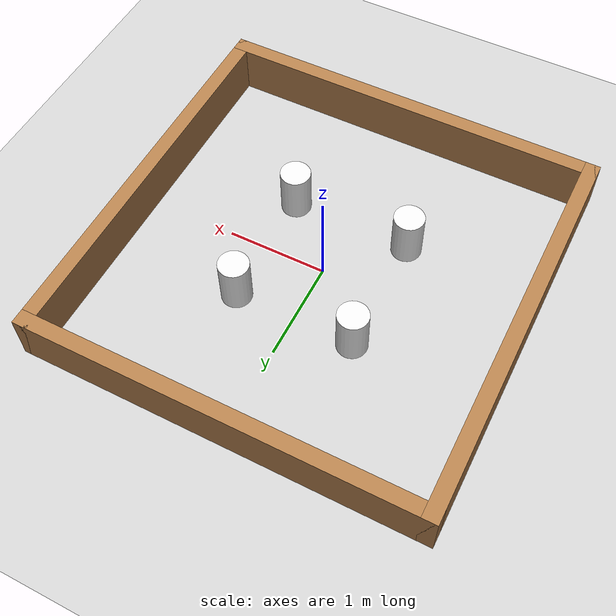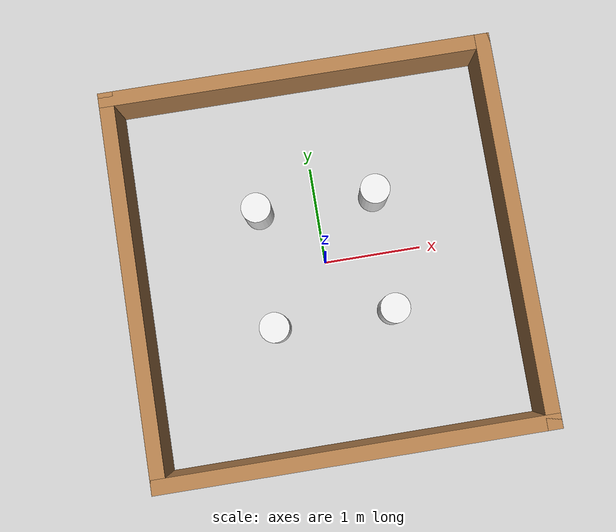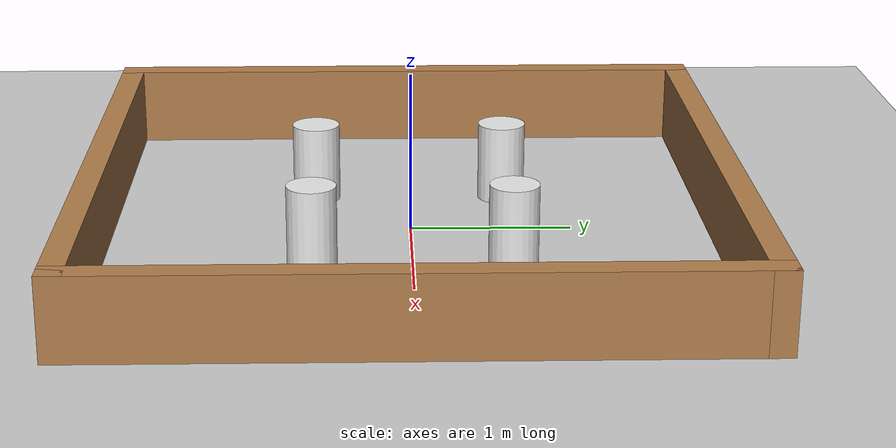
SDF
<sdf version='1.4'>
  <world name='default'>
    <!-- A global light source -->
    <include>
      <uri>model://sun</uri>
    </include>

    <!-- A ground plane -->
    <include>
      <uri>model://ground_plane</uri>
    </include>

    <physics type="ode">
      <real_time_update_rate>1000.0</real_time_update_rate>
      <max_step_size>0.001</max_step_size>
      <real_time_factor>1</real_time_factor>
      <ode>
        <solver>
          <type>quick</type>
          <iters>150</iters>
          <precon_iters>0</precon_iters>
          <sor>1.400000</sor>
          <use_dynamic_moi_rescaling>1</use_dynamic_moi_rescaling>
        </solver>
        <constraints>
          <cfm>0.00001</cfm>
          <erp>0.2</erp>
          <contact_max_correcting_vel>2000.000000</contact_max_correcting_vel>
          <contact_surface_layer>0.01000</contact_surface_layer>
        </constraints>
      </ode>
    </physics>

    <!-- Load model -->
    <include>
      <uri>model://kaist_square</uri>
    </include>

    <model name='obstacle'>
      <pose frame=''>0 0 0 0 -0 0</pose>
      <link name='obstacle'>
        <collision name='obstacle_1'>
          <pose>-0.6 -0.6 0.25 0 0 0</pose>
          <geometry>
            <cylinder>
              <radius>0.15</radius>
              <length>0.5</length>
            </cylinder>
          </geometry>
          <max_contacts>10</max_contacts>
          <surface>
            <bounce/>
            <friction>
              <ode/>
            </friction>
            <contact>
              <ode/>
            </contact>
          </surface>
        </collision>

        <visual name='obstacle_1'>
          <pose>-0.6 -0.6 0.25 0 0 0</pose>
          <geometry>
            <cylinder>
              <radius>0.15</radius>
              <length>0.5</length>
            </cylinder>
          </geometry>
          <material>
            <script>
              <uri>file://media/materials/scripts/gazebo.material</uri>
              <name>Gazebo/White</name>
            </script>
          </material>
        </visual>

        <collision name='obstacle_2'>
          <pose>-0.6 0.6 0.25 0 0 0</pose>
          <geometry>
            <cylinder>
              <radius>0.15</radius>
              <length>0.5</length>
            </cylinder>
          </geometry>
          <max_contacts>10</max_contacts>
          <surface>
            <bounce/>
            <friction>
              <ode/>
            </friction>
            <contact>
              <ode/>
            </contact>
          </surface>
        </collision>

        <visual name='obstacle_2'>
          <pose>-0.6 0.6 0.25 0 0 0</pose>
          <geometry>
            <cylinder>
              <radius>0.15</radius>
              <length>0.5</length>
            </cylinder>
          </geometry>
          <material>
            <script>
              <uri>file://media/materials/scripts/gazebo.material</uri>
              <name>Gazebo/White</name>
            </script>
          </material>
        </visual>

        <collision name='obstacle_3'>
          <pose>0.6 -0.6 0.25 0 0 0</pose>
          <geometry>
            <cylinder>
              <radius>0.15</radius>
              <length>0.5</length>
            </cylinder>
          </geometry>
          <max_contacts>10</max_contacts>
          <surface>
            <bounce/>
            <friction>
              <ode/>
            </friction>
            <contact>
              <ode/>
            </contact>
          </surface>
        </collision>

        <visual name='obstacle_3'>
          <pose>0.6 -0.6 0.25 0 0 0</pose>
          <geometry>
            <cylinder>
              <radius>0.15</radius>
              <length>0.5</length>
            </cylinder>
          </geometry>
          <material>
            <script>
              <uri>file://media/materials/scripts/gazebo.material</uri>
              <name>Gazebo/White</name>
            </script>
          </material>
        </visual>

        <collision name='obstacle_4'>
          <pose>0.6 0.6 0.25 0 0 0</pose>
          <geometry>
            <cylinder>
              <radius>0.15</radius>
              <length>0.5</length>
            </cylinder>
          </geometry>
          <max_contacts>10</max_contacts>
          <surface>
            <bounce/>
            <friction>
              <ode/>
            </friction>
            <contact>
              <ode/>
            </contact>
          </surface>
        </collision>

        <visual name='obstacle_4'>
          <pose>0.6 0.6 0.25 0 0 0</pose>
          <geometry>
            <cylinder>
              <radius>0.15</radius>
              <length>0.5</length>
            </cylinder>
          </geometry>
          <material>
            <script>
              <uri>file://media/materials/scripts/gazebo.material</uri>
              <name>Gazebo/White</name>
            </script>
          </material>
        </visual>
      </link>
      <plugin name="rotation_obstacle" filename="librotation_obstacle.so"/>
      <static>1</static>
    </model>

    <scene>
      <ambient>0.4 0.4 0.4 1</ambient>
      <background>0.7 0.7 0.7 1</background>
      <shadows>true</shadows>
    </scene>

    <gui fullscreen='0'>
      <camera name='user_camera'>
        <pose>0.0 0.0 17.0 0 1.5708 0</pose>
        <view_controller>orbit</view_controller>
      </camera>
    </gui>
  </world>
</sdf>

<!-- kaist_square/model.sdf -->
<sdf version='1.6'>
  <model name='kaist_square'>
    <pose frame=''>0 0 0 0 -0 0</pose>
    <link name='Wall_0'>
      <collision name='Wall_0_Collision'>
        <geometry>
          <box>
            <size>4 0.15 0.5</size>
          </box>
        </geometry>
        <pose frame=''>0 0 0.25 0 -0 0</pose>
      </collision>
      <visual name='Wall_0_Visual'>
        <pose frame=''>0 0 0.25 0 -0 0</pose>
        <geometry>
          <box>
            <size>4 0.15 0.5</size>
          </box>
        </geometry>
        <material>
          <script>
            <uri>file://media/materials/scripts/gazebo.material</uri>
            <name>Gazebo/Wood</name>
          </script>
          <ambient>1 1 1 1</ambient>
        </material>
      </visual>
      <pose frame=''>0 1.925 0 0 -0 0</pose>
    </link>
    <link name='Wall_2'>
      <collision name='Wall_2_Collision'>
        <geometry>
          <box>
            <size>4 0.15 0.5</size>
          </box>
        </geometry>
        <pose frame=''>0 0 0.25 0 -0 0</pose>
      </collision>
      <visual name='Wall_2_Visual'>
        <pose frame=''>0 0 0.25 0 -0 0</pose>
        <geometry>
          <box>
            <size>4 0.15 0.5</size>
          </box>
        </geometry>
        <material>
          <script>
            <uri>file://media/materials/scripts/gazebo.material</uri>
            <name>Gazebo/Wood</name>
          </script>
          <ambient>1 1 1 1</ambient>
        </material>
      </visual>
      <pose frame=''>-1.925 0 0 0 0 -1.5708</pose>
    </link>
    <link name='Wall_3'>
      <collision name='Wall_3_Collision'>
        <geometry>
          <box>
            <size>4 0.15 0.5</size>
          </box>
        </geometry>
        <pose frame=''>0 0 0.25 0 -0 0</pose>
      </collision>
      <visual name='Wall_3_Visual'>
        <pose frame=''>0 0 0.25 0 -0 0</pose>
        <geometry>
          <box>
            <size>4 0.15 0.5</size>
          </box>
        </geometry>
        <material>
          <script>
            <uri>file://media/materials/scripts/gazebo.material</uri>
            <name>Gazebo/Wood</name>
          </script>
          <ambient>1 1 1 1</ambient>
        </material>
      </visual>
      <pose frame=''>0 -1.925 0 0 -0 0</pose>
    </link>
    <link name='Wall_4'>
      <collision name='Wall_4_Collision'>
        <geometry>
          <box>
            <size>4 0.15 0.5</size>
          </box>
        </geometry>
        <pose frame=''>0 0 0.25 0 -0 0</pose>
      </collision>
      <visual name='Wall_4_Visual'>
        <pose frame=''>0 0 0.25 0 -0 0</pose>
        <geometry>
          <box>
            <size>4 0.15 0.5</size>
          </box>
        </geometry>
        <material>
          <script>
            <uri>file://media/materials/scripts/gazebo.material</uri>
            <name>Gazebo/Wood</name>
          </script>
          <ambient>1 1 1 1</ambient>
        </material>
      </visual>
      <pose frame=''>1.925 0 0 0 -0 1.5708</pose>
    </link>
    <static>1</static>
  </model>
</sdf>
